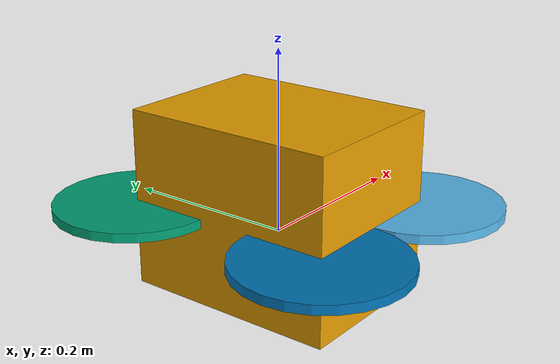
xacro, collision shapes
<?xml version='1.0' encoding='utf-8'?>
<robot name='coro_crystal_sensor_config_1' xmlns:xacro="http://ros.org/wiki/xacro">
  <xacro:arg name="name" default="Pam"/>
  <xacro:property name="robot_namespace" value="$(arg name)"/>
  <link name='${robot_namespace}/base_link'>
    <inertial>
      <origin xyz='0 0 0.037' rpy='0 -0 0'/>
      <mass value='1.5'/>
      <inertia ixx='0.012' ixy='0' ixz='0' iyy='0.0089' iyz='0' izz='0.0113'/>
    </inertial>
    <collision name='base_link_inertia_collision'>
      <origin xyz='0 0 0.037' rpy='0 -0 0'/>
      <geometry>
        <box size='0.18 0.24 0.196'/>
      </geometry>
    </collision>
    <visual name='body_visual'>
      <origin xyz='0 0 0.014' rpy='0 -0 0'/>
      <geometry>
        <box size='0.15 0.03 0.04'/>
      </geometry>
    </visual>
    <visual name='jetson_nano_visual'>
      <origin xyz='-0.02 0 -0.016' rpy='0 -0 0'/>
      <geometry>
        <box size='0.1 0.1 0.02'/>
      </geometry>
    </visual>
    <visual name='battery_visual'>
      <origin xyz='0 0 0.06' rpy='0 -0 0'/>
      <geometry>
        <box size='0.15 0.03 0.05'/>
      </geometry>
    </visual>
    <visual name='antenna1_visual'>
      <origin xyz='0.03 -0.02 0.085' rpy='0 -0 0'/>
      <geometry>
        <cylinder radius='0.005' length='0.1'/>
      </geometry>
    </visual>
    <visual name='antenna2_visual'>
      <origin xyz='-0.06 -0.02 0.085' rpy='0 -0 0'/>
      <geometry>
        <cylinder radius='0.005' length='0.1'/>
      </geometry>
    </visual>
    <visual name='landing_gear1_visual'>
      <origin xyz='0.09 0.12 -0.033' rpy='0 -0 0'/>
      <geometry>
        <cylinder radius='0.004' length='0.055'/>
      </geometry>
    </visual>
    <visual name='landing_gear2_visual'>
      <origin xyz='0.09 -0.12 -0.033' rpy='0 -0 0'/>
      <geometry>
        <cylinder radius='0.004' length='0.055'/>
      </geometry>
    </visual>
    <visual name='landing_gear3_visual'>
      <origin xyz='-0.09 0.12 -0.033' rpy='0 -0 0'/>
      <geometry>
        <cylinder radius='0.004' length='0.055'/>
      </geometry>
    </visual>
    <visual name='landing_gear4_visual'>
      <origin xyz='-0.09 -0.12 -0.033' rpy='0 -0 0'/>
      <geometry>
        <cylinder radius='0.004' length='0.055'/>
      </geometry>
    </visual>
    <visual name='arm1_visual'>
      <origin xyz='0.057 0.067 -0.003' rpy='0 -0 1'/>
      <geometry>
        <box size='0.15 0.015 0.006'/>
      </geometry>
    </visual>
    <visual name='arm2_visual'>
      <origin xyz='0.057 -0.067 -0.003' rpy='0 0 -1'/>
      <geometry>
        <box size='0.15 0.015 0.006'/>
      </geometry>
    </visual>
    <visual name='arm3_visual'>
      <origin xyz='-0.057 0.067 -0.003' rpy='0 0 -1'/>
      <geometry>
        <box size='0.15 0.015 0.006'/>
      </geometry>
    </visual>
    <visual name='arm4_visual'>
      <origin xyz='-0.057 -0.067 -0.003' rpy='0 -0 1'/>
      <geometry>
        <box size='0.15 0.015 0.006'/>
      </geometry>
    </visual>
    <visual name='motor1_visual'>
      <origin xyz='0.09 0.12 0.01' rpy='0 -0 0'/>
      <geometry>
        <cylinder radius='0.015' length='0.02'/>
      </geometry>
    </visual>
    <visual name='motor2_visual'>
      <origin xyz='-0.09 0.12 0.01' rpy='0 -0 0'/>
      <geometry>
        <cylinder radius='0.015' length='0.02'/>
      </geometry>
    </visual>
    <visual name='motor3_visual'>
      <origin xyz='0.09 -0.12 0.01' rpy='0 -0 0'/>
      <geometry>
        <cylinder radius='0.015' length='0.02'/>
      </geometry>
    </visual>
    <visual name='motor4_visual'>
      <origin xyz='-0.09 -0.12 0.01' rpy='0 -0 0'/>
      <geometry>
        <cylinder radius='0.015' length='0.02'/>
      </geometry>
    </visual>
    <visual name='lightbar_visual'>
      <origin xyz='0.076 0 0.065' rpy='0 -0 0'/>
      <geometry>
        <box size='0.001 0.02 0.04'/>
      </geometry>
    </visual>
    <visual name='d435_dae_front_visual'>
      <origin xyz='0.075 0 -0.03' rpy='0 -0 0'/>
      <geometry>
        <mesh filename='package://coro_crystal_sensor_config_1/meshes/realsense_d435.dae' scale='0.001 0.001 0.001'/>
      </geometry>
    </visual>
    <visual name='camera_left_visual'>
      <origin xyz='0.085 -0.015 0.03' rpy='0 -0 0.785398'/>
      <geometry>
        <box size='0.01 0.02 0.02'/>
      </geometry>
    </visual>
    <visual name='camera_lens_left_visual'>
      <origin xyz='0.092 -0.008 0.03' rpy='-0.785398 1.5708 0'/>
      <geometry>
        <cylinder radius='0.005' length='0.011'/>
      </geometry>
    </visual>
    <visual name='camera_right_visual'>
      <origin xyz='0.085 0.015 0.03' rpy='0 0 -0.785398'/>
      <geometry>
        <box size='0.01 0.02 0.02'/>
      </geometry>
    </visual>
    <visual name='camera_lens_right_visual'>
      <origin xyz='0.092 0.008 0.03' rpy='0.785398 1.5708 0'/>
      <geometry>
        <cylinder radius='0.005' length='0.011'/>
      </geometry>
    </visual>
  </link>
  <sensor name='imu_sensor' update_rate='250'>
    <parent link='${robot_namespace}/base_link'/>
    <origin xyz='0 0 0' rpy='0 -0 0'/>
  </sensor>
  <sensor name='air_pressure' update_rate='20'>
    <parent link='${robot_namespace}/base_link'/>
    <origin xyz='0 0 0' rpy='0 -0 0'/>
  </sensor>
  <sensor name='magnetometer' update_rate='20'>
    <parent link='${robot_namespace}/base_link'/>
    <origin xyz='0 0 0' rpy='0 -0 0'/>
  </sensor>
  <sensor name='rgbd_front' update_rate='30'>
    <parent link='${robot_namespace}/base_link'/>
    <origin xyz='0.102 0 -0.018' rpy='0 -0 0'/>
    <camera>
      <image width='640' height='360' format='R8G8B8' hfov='1.50098' near='0.01' far='300' />
    </camera>
  </sensor>
  <sensor name='camera_left' update_rate='25'>
    <parent link='${robot_namespace}/base_link'/>
    <origin xyz='0.098 -0.002 0.03' rpy='0 -0 0.785398'/>
    <camera>
      <image width='720' height='1080' format='R8G8B8' hfov='1.658' near='0.01' far='300' />
    </camera>
  </sensor>
  <sensor name='camera_right' update_rate='25'>
    <parent link='${robot_namespace}/base_link'/>
    <origin xyz='0.098 0.002 0.03' rpy='0 0 -0.785398'/>
    <camera>
      <image width='720' height='1080' format='R8G8B8' hfov='1.658' near='0.01' far='300' />
    </camera>
  </sensor>
  <sensor name='bottom_laser' update_rate='50'>
    <parent link='${robot_namespace}/base_link'/>
    <origin xyz='0 0 -0.14' rpy='0 -1.57 0'/>
  </sensor>
  <link name='${robot_namespace}/rotor_0'>
    <inertial>
      <origin xyz='0 0 0' rpy='0 -0 0'/>
      <mass value='0.008'/>
      <inertia ixx='1e-07' ixy='0' ixz='0' iyy='5e-06' iyz='0' izz='5e-06'/>
    </inertial>
    <collision name='rotor_0_collision'>
      <origin xyz='0 0 0' rpy='0 -0 0'/>
      <geometry>
        <cylinder radius='0.09' length='0.01'/>
      </geometry>
    </collision>
    <visual name='rotor_0_visual'>
      <origin xyz='0 0 0' rpy='0 -0 0'/>
      <geometry>
        <mesh filename='package://coro_crystal_sensor_config_1/meshes/propeller_ccw.dae' scale='0.09 0.09 0.09'/>
      </geometry>
    </visual>
  </link>
  <link name='${robot_namespace}/rotor_1'>
    <inertial>
      <origin xyz='0 0 0' rpy='0 -0 0'/>
      <mass value='0.008'/>
      <inertia ixx='1e-07' ixy='0' ixz='0' iyy='5e-06' iyz='0' izz='5e-06'/>
    </inertial>
    <collision name='rotor_1_collision'>
      <origin xyz='0 0 0' rpy='0 -0 0'/>
      <geometry>
        <cylinder radius='0.09' length='0.01'/>
      </geometry>
    </collision>
    <visual name='rotor_1_visual'>
      <origin xyz='0 0 0' rpy='0 -0 0'/>
      <geometry>
        <mesh filename='package://coro_crystal_sensor_config_1/meshes/propeller_ccw.dae' scale='0.09 0.09 0.09'/>
      </geometry>
    </visual>
  </link>
  <link name='${robot_namespace}/rotor_2'>
    <inertial>
      <origin xyz='0 0 0' rpy='0 -0 0'/>
      <mass value='0.008'/>
      <inertia ixx='1e-07' ixy='0' ixz='0' iyy='5e-06' iyz='0' izz='5e-06'/>
    </inertial>
    <collision name='rotor_2_collision'>
      <origin xyz='0 0 0' rpy='0 -0 0'/>
      <geometry>
        <cylinder radius='0.09' length='0.01'/>
      </geometry>
    </collision>
    <visual name='rotor_2_visual'>
      <origin xyz='0 0 0' rpy='0 -0 0'/>
      <geometry>
        <mesh filename='package://coro_crystal_sensor_config_1/meshes/propeller_cw.dae' scale='0.09 0.09 0.09'/>
      </geometry>
    </visual>
  </link>
  <link name='${robot_namespace}/rotor_3'>
    <inertial>
      <origin xyz='0 0 0' rpy='0 -0 0'/>
      <mass value='0.008'/>
      <inertia ixx='1e-07' ixy='0' ixz='0' iyy='5e-06' iyz='0' izz='5e-06'/>
    </inertial>
    <collision name='rotor_3_collision'>
      <origin xyz='0 0 0' rpy='0 -0 0'/>
      <geometry>
        <cylinder radius='0.09' length='0.01'/>
      </geometry>
    </collision>
    <visual name='rotor_3_visual'>
      <origin xyz='0 0 0' rpy='0 -0 0'/>
      <geometry>
        <mesh filename='package://coro_crystal_sensor_config_1/meshes/propeller_cw.dae' scale='0.09 0.09 0.09'/>
      </geometry>
    </visual>
  </link>
  <joint name='rotor_0_joint' type='revolute'>
    <origin xyz='0.09 -0.12 0.03' rpy='0 -0 0'/>
    <parent link='${robot_namespace}/base_link'/>
    <child link='${robot_namespace}/rotor_0'/>
    <dynamics damping='0' friction='0' />
    <axis xyz='0 0 1'/>
    <limit lower='-1e+16' upper='1e+16' effort='-1' velocity='-1'/>
  </joint>
  <joint name='rotor_1_joint' type='revolute'>
    <origin xyz='-0.09 0.12 0.03' rpy='0 -0 0'/>
    <parent link='${robot_namespace}/base_link'/>
    <child link='${robot_namespace}/rotor_1'/>
    <dynamics damping='0' friction='0' />
    <axis xyz='0 0 1'/>
    <limit lower='-1e+16' upper='1e+16' effort='-1' velocity='-1'/>
  </joint>
  <joint name='rotor_2_joint' type='revolute'>
    <origin xyz='0.09 0.12 0.03' rpy='0 -0 0'/>
    <parent link='${robot_namespace}/base_link'/>
    <child link='${robot_namespace}/rotor_2'/>
    <dynamics damping='0' friction='0' />
    <axis xyz='0 0 1'/>
    <limit lower='-1e+16' upper='1e+16' effort='-1' velocity='-1'/>
  </joint>
  <joint name='rotor_3_joint' type='revolute'>
    <origin xyz='-0.09 -0.12 0.03' rpy='0 -0 0'/>
    <parent link='${robot_namespace}/base_link'/>
    <child link='${robot_namespace}/rotor_3'/>
    <dynamics damping='0' friction='0' />
    <axis xyz='0 0 1'/>
    <limit lower='-1e+16' upper='1e+16' effort='-1' velocity='-1'/>
  </joint>
</robot>
